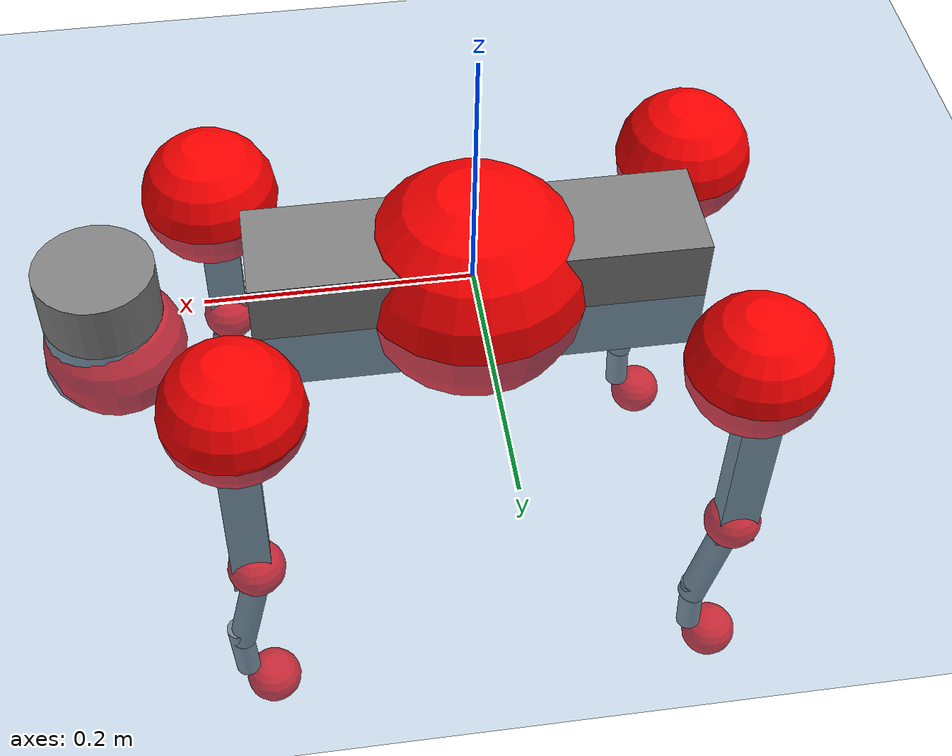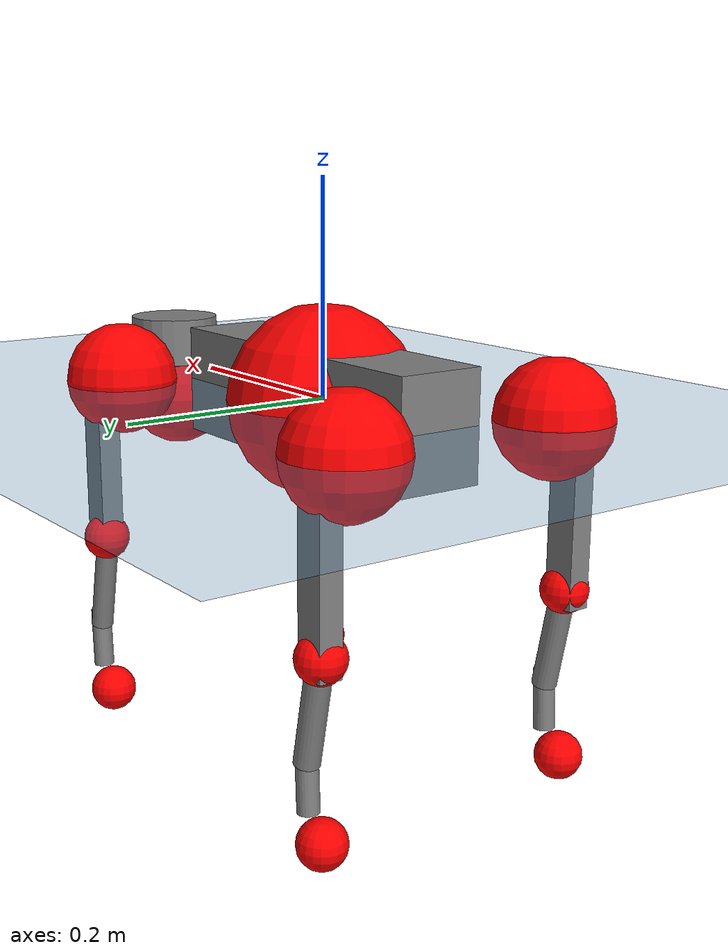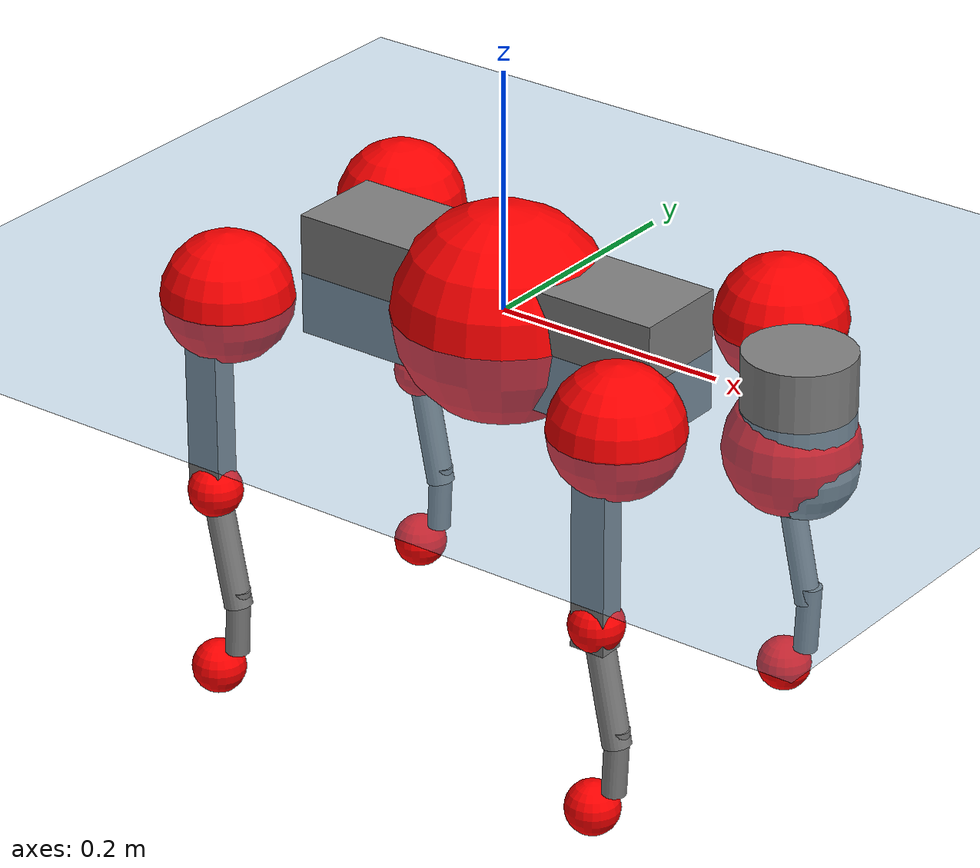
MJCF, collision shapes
<mujoco model="go2">
  <compiler angle="radian" assetdir="assets" balanceinertia="true" inertiafromgeom="false"/>

  <option timestep="0.005" density="1.2" viscosity="2e-05"/>

  <size nkey="1"/>

  <visual>
    <quality shadowsize="8192"/>
    <map shadowclip="0.5"/>
  </visual>

  <default>
    <default class="/">
      <geom contype="0" conaffinity="0" group="1" solref="-1000 -80"/>
      <site size="0.01 0.005 0.005" group="5"/>
      <general forcelimited="true" biastype="affine" gainprm="20" biasprm="0 -20 -0.5"/>
      <default class="go2">
        <joint armature="0.01" damping="0.01" frictionloss="0.2"/>
        <geom condim="1" margin="0.001"/>
        <default class="visual">
          <geom type="mesh" group="2"/>
        </default>
        <default class="collision">
          <geom group="3"/>
          <default class="foot">
            <geom size="0.022 0 0" condim="6" priority="1" friction="0.8 0.02 0.01" solimp="0.015 1 0.022"/>
          </default>
        </default>
        <default class="reward_collision_sphere">
          <geom group="5" rgba="1 0 0 1"/>
        </default>
      </default>
    </default>
  </default>

  <asset>
    <texture type="skybox" colorspace="auto" name="//unnamed_texture_0" builtin="gradient" rgb1="0.95 0.95 0.95" rgb2="0.95 0.95 0.95" width="100" height="600"/>
    <texture type="2d" colorspace="auto" name="texplane" builtin="checker" rgb1="0.345 0.575 0.748" rgb2="0.345 0.575 0.748" markrgb="1 1 1" width="512" height="512"/>
    <material name="MatPlane" class="/" texture="texplane" texuniform="true" texrepeat="2 2" specular="0.9"/>
    <material name="metal" class="/" rgba="0.9 0.95 0.95 1"/>
    <material name="black" class="/" rgba="0 0 0 1"/>
    <material name="white" class="/"/>
    <material name="gray" class="/" rgba="0.671705 0.692426 0.77427 1"/>
    <mesh name="base_0" class="/" file="base_0.obj"/>
    <mesh name="base_1" class="/" file="base_1.obj"/>
    <mesh name="base_2" class="/" file="base_2.obj"/>
    <mesh name="base_3" class="/" file="base_3.obj"/>
    <mesh name="base_4" class="/" file="base_4.obj"/>
    <mesh name="hip_0" class="/" file="hip_0.obj"/>
    <mesh name="hip_1" class="/" file="hip_1.obj"/>
    <mesh name="thigh_0" class="/" file="thigh_0.obj"/>
    <mesh name="thigh_1" class="/" file="thigh_1.obj"/>
    <mesh name="thigh_mirror_0" class="/" file="thigh_mirror_0.obj"/>
    <mesh name="thigh_mirror_1" class="/" file="thigh_mirror_1.obj"/>
    <mesh name="calf_0" class="/" file="calf_0.obj"/>
    <mesh name="calf_1" class="/" file="calf_1.obj"/>
    <mesh name="calf_mirror_0" class="/" file="calf_mirror_0.obj"/>
    <mesh name="calf_mirror_1" class="/" file="calf_mirror_1.obj"/>
    <mesh name="foot" class="/" file="foot.obj"/>
  </asset>

  <worldbody>
    <geom name="floor" class="/" size="100 100 0.125" type="plane" group="0" material="MatPlane"/>
    <light name="toplight_shadow" class="/" pos="0 0 5" dir="0.0990148 0.0990148 -0.990148" type="directional" ambient="0.04 0.04 0.04" diffuse="0.55 0.55 0.55" specular="0.12 0.12 0.12"/>
    <light name="toplight_fill" class="/" pos="0 0 5" dir="0.0990148 0.0990148 -0.990148" type="directional" castshadow="false" ambient="0.04 0.04 0.04" diffuse="0.3 0.3 0.3" specular="0.08 0.08 0.08"/>
    <body name="trunk" childclass="go2" pos="-0.000141642 0.000107 -0.00154134" quat="1 0.000131453 -0.000268308 -0.000335335">
      <inertial pos="0.0200756 -0.00112282 -0.00320205" quat="-0.000541887 0.713402 -0.00172846 0.700752" mass="4.88082" diaginertia="0.0875631 0.0761777 0.00594858"/>
      <joint name="//unnamed_joint_0" type="free" armature="0" damping="0" frictionloss="0"/>
      <geom name="//unnamed_geom_1" class="visual" material="black" mesh="base_0"/>
      <geom name="//unnamed_geom_2" class="visual" material="black" mesh="base_1"/>
      <geom name="//unnamed_geom_3" class="visual" material="black" mesh="base_2"/>
      <geom name="//unnamed_geom_4" class="visual" material="white" mesh="base_3"/>
      <geom name="//unnamed_geom_5" class="visual" material="gray" mesh="base_4"/>
      <geom name="trunk_1" class="collision" size="0.16814 0.0417891 0.0509514" type="box"/>
      <geom name="trunk_2" class="collision" size="0.0446942 0.0402248" pos="0.275616 0 0.00757287" type="cylinder"/>
      <geom name="trunk_3" class="collision" size="0.0420126" pos="0.283352 0 -0.0454372"/>
      <geom name="//unnamed_geom_9" class="reward_collision_sphere" size="0.0893884"/>
      <geom name="//unnamed_geom_10" class="reward_collision_sphere" size="0.0536331" pos="0.27078 0 -0.0340779"/>
      <site name="imu" pos="-0.011403 -0.0122116 0.0456258" size="0.00893884"/>
      <camera name="track" pos="0 -1.91459 0" quat="0.707107 0.707107 0 0" mode="trackcom"/>
      <camera name="ego_camera" pos="0.301727 0 0.0340779" quat="-0.5 -0.5 0.5 0.5"/>
      <body name="FL_hip" pos="0.186378 0.0424954 0.00466809" quat="1 -0.000194245 -0.000634705 0.000647254">
        <inertial pos="-0.00530997 0.00291517 -0.00268681" quat="0.498985 0.501095 0.50126 0.498654" mass="0.4559" diaginertia="0.00072244 0.00044982 0.000119265"/>
        <joint name="FL_hip_joint" pos="0 0 0" axis="0.999981 -0.00612546 -0.000498299" stiffness="0.000598513" range="-1.10339 1.05763" armature="0.00996584" damping="0.0187553" frictionloss="0.174617"/>
        <geom name="//unnamed_geom_11" class="visual" material="metal" mesh="hip_0"/>
        <geom name="//unnamed_geom_12" class="visual" material="gray" mesh="hip_1"/>
        <geom name="//unnamed_geom_13" class="collision" size="0.0411187 0.0178777" pos="0 0.0765835 0" quat="0.707107 0.707107 0 0" type="cylinder"/>
        <geom name="//unnamed_geom_14" class="reward_collision_sphere" size="0.0536331" pos="0 0.0670105 0"/>
        <body name="FL_thigh" pos="0.000896319 0.090335 0.00319429" quat="1 2.66019e-05 0.000282297 -5.76909e-05">
          <inertial pos="-0.00263096 -0.0209601 -0.0271745" quat="0.827722 0.0871286 -0.0207262 0.553946" mass="0.847355" diaginertia="0.00499007 0.00476389 0.000223927"/>
          <joint name="FL_thigh_joint" pos="0 0 0" axis="0.00806178 0.999921 0.00965603" range="-1.61122 3.54764" armature="0.00987749" damping="0" frictionloss="0.180375"/>
          <geom name="//unnamed_geom_15" class="visual" material="metal" mesh="thigh_0"/>
          <geom name="//unnamed_geom_16" class="visual" material="gray" mesh="thigh_1"/>
          <geom name="//unnamed_geom_17" class="collision" size="0.0951987 0.0109501 0.015196" pos="0 0 -0.080651" quat="0.707107 0 0.707107 0" type="box"/>
          <body name="FL_calf" pos="-0.00354401 0.00135044 -0.160227" quat="1 0.00038238 -4.23412e-05 -2.46386e-06">
            <inertial pos="0.00661612 -0.000472849 -0.106309" quat="0.710749 0.00160433 -0.00396734 0.703433" mass="0.163894" diaginertia="0.00125753 0.00119647 1.29705e-05"/>
            <joint name="FL_calf_joint" pos="0 0 0" axis="-0.000465591 0.999999 -0.00157669" stiffness="0.00261508" range="-2.71517 -0.863646" armature="0.00778619" damping="0.00933095" frictionloss="0.165209"/>
            <geom name="//unnamed_geom_18" class="visual" material="gray" mesh="calf_0"/>
            <geom name="//unnamed_geom_19" class="visual" material="black" mesh="calf_1"/>
            <geom name="FL_calf0" class="collision" size="0.0107266 0.0536331" pos="0.00773658 0 -0.0454372" quat="0.994493 0 -0.104807 0" type="cylinder"/>
            <geom name="//unnamed_geom_21" class="collision" size="0.00983273 0.0290512" pos="0.0193415 0 -0.112078" quat="0.999688 0 0.0249974 0" type="cylinder"/>
            <geom name="//unnamed_geom_22" class="visual" pos="0 0 -0.161302" quat="1 0 0 0" material="black" mesh="foot"/>
            <geom name="FL_foot" class="foot" size="0.0173041" pos="-0.00193415 0 -0.161302"/>
            <geom name="//unnamed_geom_24" class="reward_collision_sphere" size="0.0223471"/>
            <geom name="//unnamed_geom_25" class="reward_collision_sphere" size="0.0223471" pos="-0.00193415 0 -0.161302"/>
            <site name="FL_foot" class="foot" pos="-0.00193415 0 -0.161302" size="0.00893884"/>
          </body>
        </body>
      </body>
      <body name="FR_hip" pos="0.19077 -0.0471212 0.00178249" quat="1 0.000221441 -0.000346642 -0.000295759">
        <inertial pos="-0.00544718 -0.00163317 -0.00190882" quat="0.499869 0.505408 0.499076 0.495597" mass="0.501243" diaginertia="0.000753203 0.000465091 0.000119402"/>
        <joint name="FR_hip_joint" pos="0 0 0" axis="0.999995 -0.00299579 -0.000707202" stiffness="0.0128928" range="-1.0299 1.06211" armature="0.0093504" damping="0.0238849" frictionloss="0.160795"/>
        <geom name="//unnamed_geom_26" class="visual" pos="0 1.74238e-09 7.47341e-08" quat="4.63268e-05 1 0 0" material="metal" mesh="hip_0"/>
        <geom name="//unnamed_geom_27" class="visual" pos="0 2.8246e-09 -1.84846e-07" quat="4.63268e-05 1 0 0" material="gray" mesh="hip_1"/>
        <geom name="//unnamed_geom_28" class="collision" size="0.0411187 0.0178777" pos="0 -0.0765835 0" quat="0.707107 0.707107 0 0" type="cylinder"/>
        <geom name="//unnamed_geom_29" class="reward_collision_sphere" size="0.0536331" pos="0 -0.0670105 0"/>
        <body name="FR_thigh" pos="-0.00159277 -0.0897131 0.00195977" quat="0.999999 0.000385972 0.00049191 -0.00119354">
          <inertial pos="-0.00434675 0.0204328 -0.0248527" quat="0.551226 -0.0196817 0.0836444 0.829919" mass="0.776083" diaginertia="0.0049476 0.00442301 0.000217814"/>
          <joint name="FR_thigh_joint" pos="0 0 0" axis="-0.000155567 -0.999947 -0.0102876" stiffness="0.00126237" range="-3.53455 1.5837" armature="0.00850942" damping="0.00345427" frictionloss="0.160847"/>
          <geom name="//unnamed_geom_30" class="visual" material="metal" mesh="thigh_mirror_0"/>
          <geom name="//unnamed_geom_31" class="visual" material="gray" mesh="thigh_mirror_1"/>
          <geom name="//unnamed_geom_32" class="collision" size="0.0951987 0.0109501 0.015196" pos="0 0 -0.080651" quat="0.707107 0 0.707107 0" type="box"/>
          <body name="FR_calf" pos="-0.000828461 0.00270864 -0.158509" quat="1 -0.000865742 2.05535e-06 0.000150479">
            <inertial pos="0.00356422 -0.00140211 -0.108767" quat="0.706032 -0.00146732 0.0128734 0.708061" mass="0.177385" diaginertia="0.00129377 0.00118822 1.33666e-05"/>
            <joint name="FR_calf_joint" pos="0 0 0" axis="0.00827549 -0.999869 -0.0138784" range="0.88518 2.71107" armature="0.00903343" damping="0.00927603" frictionloss="0.198376"/>
            <geom name="//unnamed_geom_33" class="visual" material="gray" mesh="calf_mirror_0"/>
            <geom name="//unnamed_geom_34" class="visual" material="black" mesh="calf_mirror_1"/>
            <geom name="FR_calf0" class="collision" size="0.0116205 0.0536331" pos="0.00967073 0 -0.0454372" quat="0.995004 0 -0.0998334 0" type="cylinder"/>
            <geom name="//unnamed_geom_36" class="collision" size="0.00983273 0.0290512" pos="0.0193415 0 -0.112078" quat="0.999688 0 0.0249974 0" type="cylinder"/>
            <geom name="//unnamed_geom_37" class="visual" pos="0 0 -0.161302" quat="1 0 0 0" material="black" mesh="foot"/>
            <geom name="FR_foot" class="foot" size="0.0216892" pos="-0.00193415 0 -0.161302"/>
            <geom name="//unnamed_geom_39" class="reward_collision_sphere" size="0.0223471"/>
            <geom name="//unnamed_geom_40" class="reward_collision_sphere" size="0.0223471" pos="-0.00193415 0 -0.161302"/>
            <site name="FR_foot" class="foot" pos="-0.00193415 0 -0.161302" size="0.00893884"/>
          </body>
        </body>
      </body>
      <body name="RL_hip" pos="-0.189287 0.0456703 -0.000147317" quat="1 0.000131041 -0.000645086 -9.10339e-05">
        <inertial pos="0.00258845 0.00168355 0.0017107" quat="0.510283 0.502996 0.498704 0.48775" mass="0.500064" diaginertia="0.000774272 0.000491794 0.000115751"/>
        <joint name="RL_hip_joint" pos="0 0 0" axis="-0.999934 0.0105385 0.00460996" range="-1.00679 0.994286" armature="0.00915641" damping="0" frictionloss="0.201695"/>
        <geom name="//unnamed_geom_41" class="visual" pos="-1.82757e-09 0 -3.58246e-07" quat="4.63268e-05 0 1 0" material="metal" mesh="hip_0"/>
        <geom name="//unnamed_geom_42" class="visual" pos="-2.96271e-09 0 -3.17713e-07" quat="4.63268e-05 0 1 0" material="gray" mesh="hip_1"/>
        <geom name="//unnamed_geom_43" class="collision" size="0.0411187 0.0178777" pos="0 0.0765835 0" quat="0.707107 0.707107 0 0" type="cylinder"/>
        <geom name="//unnamed_geom_44" class="reward_collision_sphere" size="0.0536331" pos="0 0.0670105 0"/>
        <body name="RL_thigh" pos="-0.000104611 0.0907097 -0.000179587" quat="0.999999 -0.000110764 0.000516196 -0.00118815">
          <inertial pos="-0.00612715 -0.0228353 -0.024769" quat="0.828512 0.0982981 -0.021235 0.550867" mass="0.807545" diaginertia="0.00489278 0.00451023 0.000223874"/>
          <joint name="RL_thigh_joint" pos="0 0 0" axis="-0.00353992 0.999903 -0.0134493" stiffness="0.0125072" range="-0.528024 4.54805" armature="0.00900072" damping="0" frictionloss="0.182436"/>
          <geom name="//unnamed_geom_45" class="visual" material="metal" mesh="thigh_0"/>
          <geom name="//unnamed_geom_46" class="visual" material="gray" mesh="thigh_1"/>
          <geom name="//unnamed_geom_47" class="collision" size="0.0951987 0.0109501 0.015196" pos="0 0 -0.080651" quat="0.707107 0 0.707107 0" type="box"/>
          <body name="RL_calf" pos="0.000945086 -0.00153698 -0.161037" quat="1 0.000179371 -0.000204818 -0.000224438">
            <inertial pos="0.00712826 -0.00294586 -0.108716" quat="0.710926 0.00198056 -0.00410411 0.703252" mass="0.166814" diaginertia="0.00117899 0.00113004 1.2367e-05"/>
            <joint name="RL_calf_joint" pos="0 0 0" axis="0.00620919 0.999976 0.00291235" stiffness="0.000488215" range="-2.73274 -0.781692" armature="0.00888722" damping="0.0107975" frictionloss="0.202466"/>
            <geom name="//unnamed_geom_48" class="visual" material="gray" mesh="calf_0"/>
            <geom name="//unnamed_geom_49" class="visual" material="black" mesh="calf_1"/>
            <geom name="RL_calf0" class="collision" size="0.0116205 0.0536331" pos="0.00967073 0 -0.0454372" quat="0.995004 0 -0.0998334 0" type="cylinder"/>
            <geom name="//unnamed_geom_51" class="collision" size="0.00983273 0.0290512" pos="0.0193415 0 -0.112078" quat="0.999688 0 0.0249974 0" type="cylinder"/>
            <geom name="//unnamed_geom_52" class="visual" pos="0 0 -0.161302" quat="1 0 0 0" material="black" mesh="foot"/>
            <geom name="RL_foot" class="foot" size="0.0196655" pos="-0.00193415 0 -0.161302"/>
            <geom name="//unnamed_geom_54" class="reward_collision_sphere" size="0.0223471"/>
            <geom name="//unnamed_geom_55" class="reward_collision_sphere" size="0.0223471" pos="-0.00193415 0 -0.161302"/>
            <site name="RL_foot" class="foot" pos="-0.00193415 0 -0.161302" size="0.00893884"/>
          </body>
        </body>
      </body>
      <body name="RR_hip" pos="-0.186928 -0.0430458 0.00166091" quat="1 -2.98358e-05 -1.89507e-05 4.58142e-05">
        <inertial pos="0.00700667 0.00100681 -0.00271189" quat="0.507708 0.495471 0.492127 0.504531" mass="0.458783" diaginertia="0.00074901 0.000452344 0.000116064"/>
        <joint name="RR_hip_joint" pos="0 0 0" axis="-0.999822 -0.00559724 0.0180191" range="-1.05389 1.08754" armature="0.00896005" damping="0.00286362" frictionloss="0.197516"/>
        <geom name="//unnamed_geom_56" class="visual" pos="1.82723e-09 1.74238e-09 -4.3298e-07" quat="2.14617e-09 4.63268e-05 4.63268e-05 -1" material="metal" mesh="hip_0"/>
        <geom name="//unnamed_geom_57" class="visual" pos="2.96355e-09 2.8246e-09 -1.32867e-07" quat="2.14617e-09 4.63268e-05 4.63268e-05 -1" material="gray" mesh="hip_1"/>
        <geom name="//unnamed_geom_58" class="collision" size="0.0411187 0.0178777" pos="0 -0.0765835 0" quat="0.707107 0.707107 0 0" type="cylinder"/>
        <geom name="//unnamed_geom_59" class="reward_collision_sphere" size="0.0536331" pos="0 -0.0670105 0"/>
        <body name="RR_thigh" pos="-0.000243986 -0.0914562 0.00154921" quat="1 -0.000393778 5.62897e-05 0.000176295">
          <inertial pos="-0.00329584 0.0190191 -0.0223929" quat="0.552661 -0.0166099 0.0818951 0.829206" mass="0.844324" diaginertia="0.0052128 0.00489031 0.000224825"/>
          <joint name="RR_thigh_joint" pos="0 0 0" axis="-0.00686607 -0.999972 -0.00300545" stiffness="0.00162411" range="-4.48316 0.538134" armature="0.00787013" damping="0.0200699" frictionloss="0.201587"/>
          <geom name="//unnamed_geom_60" class="visual" material="metal" mesh="thigh_mirror_0"/>
          <geom name="//unnamed_geom_61" class="visual" material="gray" mesh="thigh_mirror_1"/>
          <geom name="//unnamed_geom_62" class="collision" size="0.0951987 0.0109501 0.015196" pos="0 0 -0.080651" quat="0.707107 0 0.707107 0" type="box"/>
          <body name="RR_calf" pos="0.00336241 -0.000862689 -0.161294" quat="1 0.000524489 -3.00346e-05 -0.000452861">
            <inertial pos="0.00860578 0.00155266 -0.10643" quat="0.704486 -0.00557256 -0.00487997 0.709679" mass="0.16768" diaginertia="0.00124392 0.00110254 1.24228e-05"/>
            <joint name="RR_calf_joint" pos="0 0 0" axis="0.00220472 -0.999996 -0.00164612" range="0.852175 2.72023" armature="0.0092122" damping="0.0137311" frictionloss="0.187778"/>
            <geom name="//unnamed_geom_63" class="visual" material="gray" mesh="calf_mirror_0"/>
            <geom name="//unnamed_geom_64" class="visual" material="black" mesh="calf_mirror_1"/>
            <geom name="RR_calf0" class="collision" size="0.0116205 0.0536331" pos="0.00967073 0 -0.0454372" quat="0.995004 0 -0.0998334 0" type="cylinder"/>
            <geom name="//unnamed_geom_66" class="collision" size="0.00983273 0.0290512" pos="0.0193415 0 -0.112078" quat="0.999688 0 0.0249974 0" type="cylinder"/>
            <geom name="//unnamed_geom_67" class="visual" pos="0 0 -0.161302" quat="1 0 0 0" material="black" mesh="foot"/>
            <geom name="RR_foot" class="foot" size="0.0211425" pos="-0.00193415 0 -0.161302"/>
            <geom name="//unnamed_geom_69" class="reward_collision_sphere" size="0.0223471"/>
            <geom name="//unnamed_geom_70" class="reward_collision_sphere" size="0.0223471" pos="-0.00193415 0 -0.161302"/>
            <site name="RR_foot" class="foot" pos="-0.00193415 0 -0.161302" size="0.00893884"/>
          </body>
        </body>
      </body>
    </body>
  </worldbody>

  <contact>
    <pair class="/" geom1="floor" geom2="FL_foot" name="//unnamed_contact_0"/>
    <pair class="/" geom1="floor" geom2="FR_foot" name="//unnamed_contact_1"/>
    <pair class="/" geom1="floor" geom2="RL_foot" name="//unnamed_contact_2"/>
    <pair class="/" geom1="floor" geom2="RR_foot" name="//unnamed_contact_3"/>
  </contact>

  <actuator>
    <general name="FL_hip" class="/" joint="FL_hip_joint" forcerange="-19.2975 19.2975" gainprm="17.507" biasprm="0 -17.507 -0.478771"/>
    <general name="FL_thigh" class="/" joint="FL_thigh_joint" forcerange="-22.8885 22.8885" gainprm="17.507" biasprm="0 -17.507 -0.478771"/>
    <general name="FL_calf" class="/" joint="FL_calf_joint" forcerange="-44.0091 44.0091" gainprm="17.507" biasprm="0 -17.507 -0.478771"/>
    <general name="FR_hip" class="/" joint="FR_hip_joint" forcerange="-19.2257 19.2257" gainprm="17.507" biasprm="0 -17.507 -0.478771"/>
    <general name="FR_thigh" class="/" joint="FR_thigh_joint" forcerange="-23.3242 23.3242" gainprm="17.507" biasprm="0 -17.507 -0.478771"/>
    <general name="FR_calf" class="/" joint="FR_calf_joint" forcerange="-36.2952 36.2952" gainprm="17.507" biasprm="0 -17.507 -0.478771"/>
    <general name="RL_hip" class="/" joint="RL_hip_joint" forcerange="-22.6315 22.6315" gainprm="17.507" biasprm="0 -17.507 -0.478771"/>
    <general name="RL_thigh" class="/" joint="RL_thigh_joint" forcerange="-21.2313 21.2313" gainprm="17.507" biasprm="0 -17.507 -0.478771"/>
    <general name="RL_calf" class="/" joint="RL_calf_joint" forcerange="-36.6544 36.6544" gainprm="17.507" biasprm="0 -17.507 -0.478771"/>
    <general name="RR_hip" class="/" joint="RR_hip_joint" forcerange="-22.7148 22.7148" gainprm="17.507" biasprm="0 -17.507 -0.478771"/>
    <general name="RR_thigh" class="/" joint="RR_thigh_joint" forcerange="-20.0413 20.0413" gainprm="17.507" biasprm="0 -17.507 -0.478771"/>
    <general name="RR_calf" class="/" joint="RR_calf_joint" forcerange="-38.5131 38.5131" gainprm="17.507" biasprm="0 -17.507 -0.478771"/>
  </actuator>

  <sensor>
    <gyro site="imu" name="imu_angular_velocity"/>
    <velocimeter site="imu" name="imu_linear_velocity"/>
    <framelinvel objtype="site" objname="FL_foot" name="FL_foot_global_linear_velocity"/>
    <framelinvel objtype="site" objname="FR_foot" name="FR_foot_global_linear_velocity"/>
    <framelinvel objtype="site" objname="RL_foot" name="RL_foot_global_linear_velocity"/>
    <framelinvel objtype="site" objname="RR_foot" name="RR_foot_global_linear_velocity"/>
  </sensor>

  <keyframe>
    <key name="home" qpos="0 0 0.325 1 0 0 0 0.1 0.8 -1.5 -0.1 -0.8 1.5 -0.1 0.8 -1.5 0.1 -0.8 1.5"/>
  </keyframe>
</mujoco>
